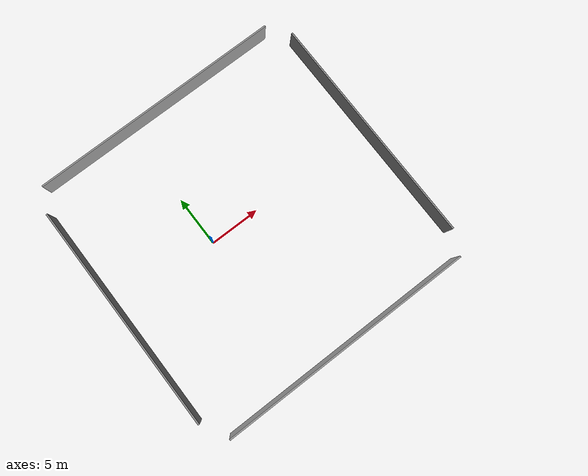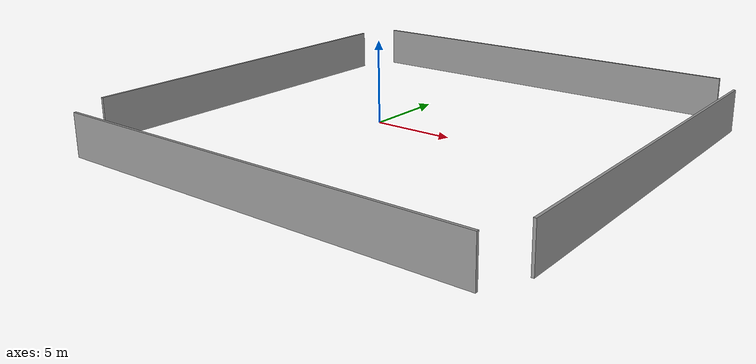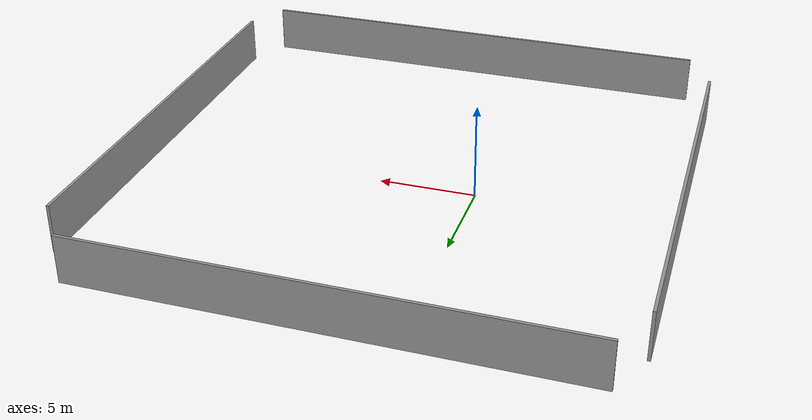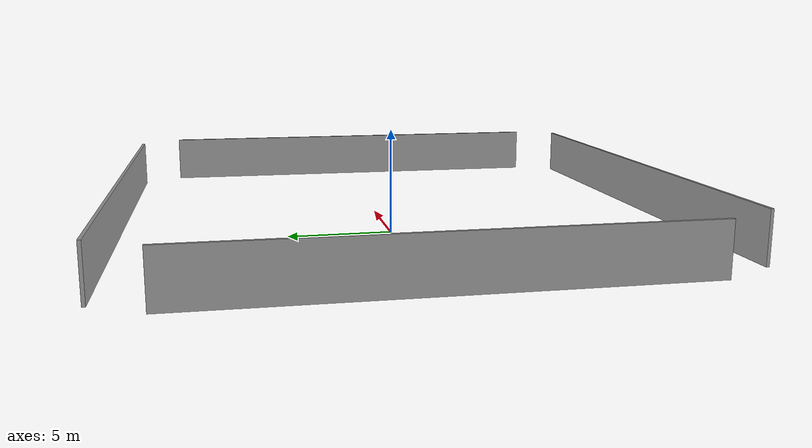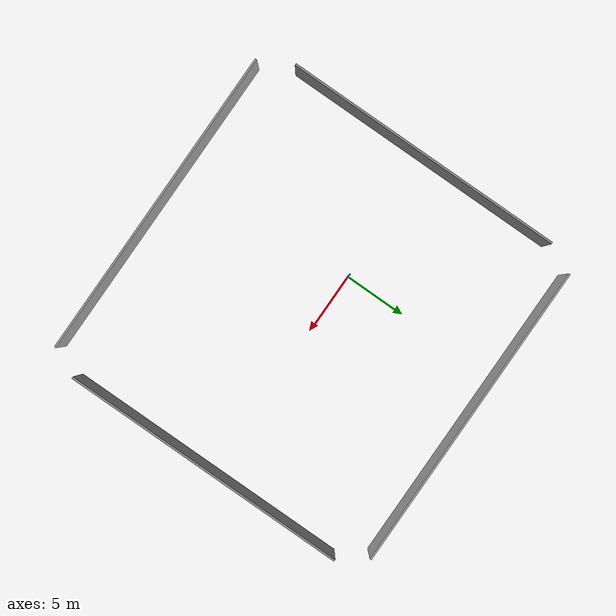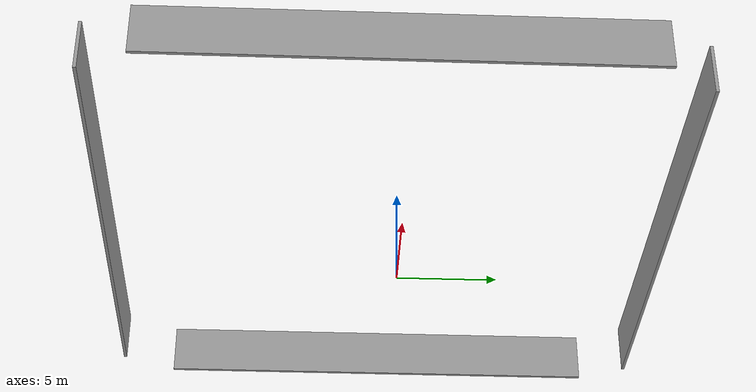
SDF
<?xml version='1.0'?>
<sdf version='1.7'>
  <model name='world'>
    <pose>3.60702 -0.720893 0 0 -0 0</pose>
    <link name='Wall_25'>
      <collision name='Wall_25_Collision'>
        <geometry>
          <box>
            <size>22.5 0.15 2.5</size>
          </box>
        </geometry>
        <pose>0 0 1.25 0 -0 0</pose>
      </collision>
      <visual name='Wall_25_Visual'>
        <pose>0 0 1.25 0 -0 0</pose>
        <geometry>
          <box>
            <size>22.5 0.15 2.5</size>
          </box>
        </geometry>
        <material>
          <script>
            <uri>file://media/materials/scripts/gazebo.material</uri>
            <name>Gazebo/Grey</name>
          </script>
          <ambient>1 1 1 1</ambient>
        </material>
        <meta>
          <layer>0</layer>
        </meta>
      </visual>
      <pose>-13.8282 0.124328 0 0 -0 -1.5708</pose>
    </link>
    <link name='Wall_28'>
      <collision name='Wall_28_Collision'>
        <geometry>
          <box>
            <size>25 0.15 2.5</size>
          </box>
        </geometry>
        <pose>0 0 1.25 0 -0 0</pose>
      </collision>
      <visual name='Wall_28_Visual'>
        <pose>0 0 1.25 0 -0 0</pose>
        <geometry>
          <box>
            <size>25 0.15 2.5</size>
          </box>
        </geometry>
        <material>
          <script>
            <uri>file://media/materials/scripts/gazebo.material</uri>
            <name>Gazebo/Grey</name>
          </script>
          <ambient>1 1 1 1</ambient>
        </material>
        <meta>
          <layer>0</layer>
        </meta>
      </visual>
      <pose>-0.219485 13.6668 0 0 -0 0</pose>
    </link>
    <link name='Wall_30'>
      <collision name='Wall_30_Collision'>
        <geometry>
          <box>
            <size>23 0.15 2.5</size>
          </box>
        </geometry>
        <pose>0 0 1.25 0 -0 0</pose>
      </collision>
      <visual name='Wall_30_Visual'>
        <pose>0 0 1.25 0 -0 0</pose>
        <geometry>
          <box>
            <size>23 0.15 2.5</size>
          </box>
        </geometry>
        <material>
          <script>
            <uri>file://media/materials/scripts/gazebo.material</uri>
            <name>Gazebo/Grey</name>
          </script>
          <ambient>1 1 1 1</ambient>
        </material>
        <meta>
          <layer>0</layer>
        </meta>
      </visual>
      <pose>13.8282 0.089553 0 0 -0 -1.5708</pose>
    </link>
    <link name='Wall_32'>
      <collision name='Wall_32_Collision'>
        <geometry>
          <box>
            <size>25.25 0.15 2.5</size>
          </box>
        </geometry>
        <pose>0 0 1.25 0 -0 0</pose>
      </collision>
      <visual name='Wall_32_Visual'>
        <pose>0 0 1.25 0 -0 0</pose>
        <geometry>
          <box>
            <size>25.25 0.15 2.5</size>
          </box>
        </geometry>
        <material>
          <script>
            <uri>file://media/materials/scripts/gazebo.material</uri>
            <name>Gazebo/Grey</name>
          </script>
          <ambient>1 1 1 1</ambient>
        </material>
        <meta>
          <layer>0</layer>
        </meta>
      </visual>
      <pose>0.12074 -13.6668 0 0 -0 0</pose>
    </link>
    <static>1</static>
  </model>
</sdf>
